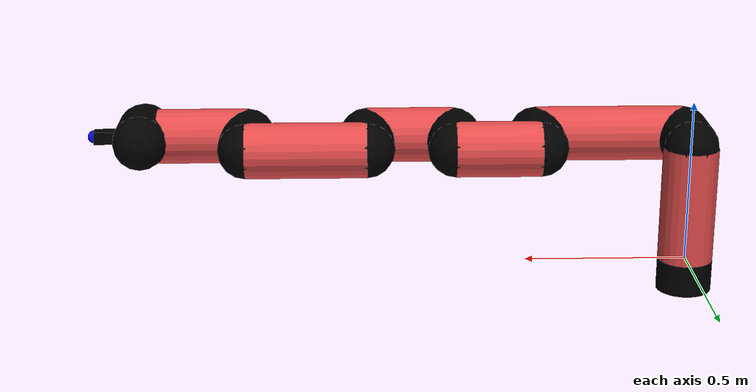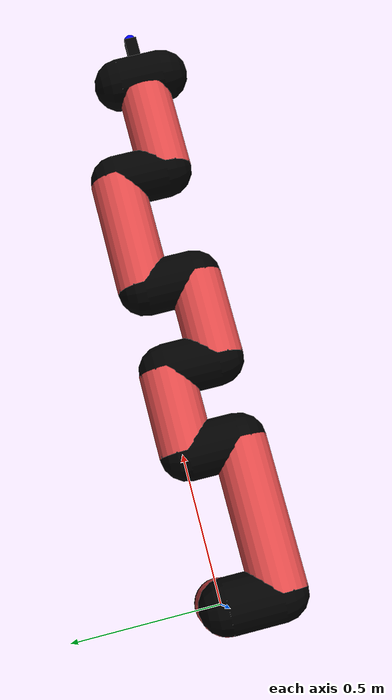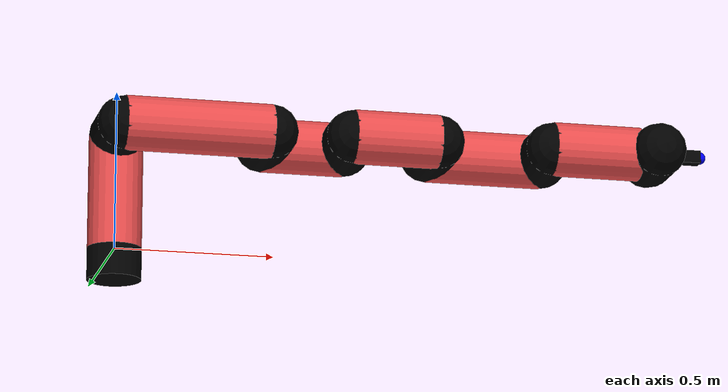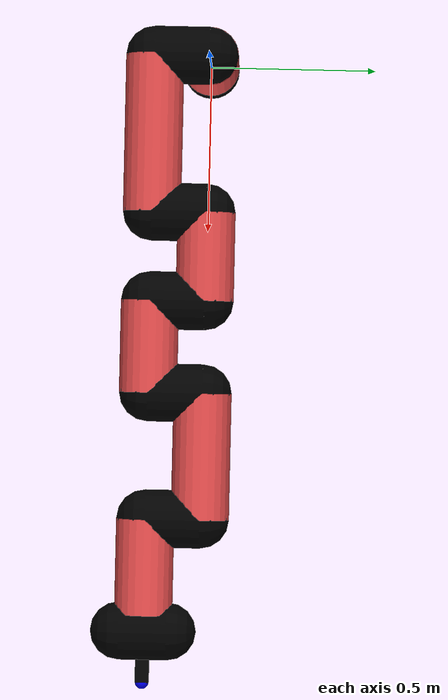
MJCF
<mujoco model="manipulator">
		<compiler angle="degree" coordinate="local" inertiafromgeom="auto" meshdir="meshes/"/>
		<option gravity="0 0 0" integrator="RK4" iterations="30" timestep="0.01"/>

		<default>
		<joint armature="1" limited="true" stiffness="10" damping="15" frictionloss="5.0"/>
		<geom conaffinity="1" condim="3" contype="1" friction=".5 .1 .1" margin="0.002"/>
		<motor ctrllimited="true"/>
		<position ctrllimited="true"/>
		</default>

		<asset>
		<texture builtin="gradient" height="100" rgb1="1.0 1.0 1.0" rgb2="1.0 1.0 1.0" type="skybox" width="100"/>
		<texture builtin="flat" height="32" name="arm_tex" rgb1="0.9 0.3 0.3" type="2d" width="32"/>
		<texture builtin="flat" height="32" name="gripper_tex" rgb1="0.0 0.0 0.0" type="cube" width="32"/>

		<material name="arm_mat" shininess="0.1" specular="0.1" texture="arm_tex"/>
		<material name="gripper_mat" shininess="1" specular="1" texture="gripper_tex"/>
		</asset>

		<worldbody>
		<light cutoff="45" diffuse=".8 .8 .8" dir="0 0.16 -1" directional="false" name="light" pos="0 -2.0 8.0" specular="0.3 0.3 0.3"/>

		<body name="base_link" pos="0 0 -0.1">
		<geom fromto="0 0 0 0 0 0.1" material="arm_mat" name="base_link" rgba="0.0 0.0 0.0 1" size="0.085" type="cylinder"/>
		</body>

		<body name="l1" pos="0 0 0">
<geom fromto="0 0 0 0 0 0.36" material="arm_mat" name="l1" rgba="0.9 0.3 0.3 1" size="0.085" type="cylinder"/>
<geom fromto="0 0 0.36 0 -0.16 0.36" material="arm_mat" name="l1_ex" rgba="0.0 0.0 0.0 1" size="0.085" type="capsule"/>
<joint axis="0 0 1" name="j1" pos="0 0 0" range="-90 90" damping="25.24" frictionloss="12.49"/>

<body name="l2" pos="0 -0.16 0.36">
<geom fromto="0 0 0 0.46 0 0" material="arm_mat" name="l2" rgba="0.9 0.3 0.3 1" size="0.085" type="cylinder"/>
<geom fromto="0.46 0 0 0.46 0.16 0" material="arm_mat" name="l2_ex" rgba="0.0 0.0 0.0 1" size="0.085" type="capsule"/>
<joint axis="0.0 1.0 0.0" name="j2" pos="0 0 0" range="-90 60" damping="26.14" frictionloss="11.02"/>

<body name="l3" pos="0.46 0.16 0">
<geom fromto="0 0 0 0.26 0 0" material="arm_mat" name="l3" rgba="0.9 0.3 0.3 1" size="0.085" type="cylinder"/>
<geom fromto="0.26 0 0 0.26 -0.16 0" material="arm_mat" name="l3_ex" rgba="0.0 0.0 0.0 1" size="0.085" type="capsule"/>
<joint axis="0.0 1.0 0.0" name="j3" pos="0 0 0" range="-30 60" damping="25.77" frictionloss="12.47"/>

<body name="l4" pos="0.26 -0.16 0">
<geom fromto="0 0 0 0.27 0 0" material="arm_mat" name="l4" rgba="0.9 0.3 0.3 1" size="0.085" type="cylinder"/>
<geom fromto="0.27 0 0 0.27 0.16 0" material="arm_mat" name="l4_ex" rgba="0.0 0.0 0.0 1" size="0.085" type="capsule"/>
<joint axis="0.0 1.0 0.0" name="j4" pos="0 0 0" range="-30 60" damping="34.69" frictionloss="11.02"/>

<body name="l5" pos="0.27 0.16 0">
<geom fromto="0 0 0 0.37 0 0" material="arm_mat" name="l5" rgba="0.9 0.3 0.3 1" size="0.085" type="cylinder"/>
<geom fromto="0.37 0 0 0.37 -0.16 0" material="arm_mat" name="l5_ex" rgba="0.0 0.0 0.0 1" size="0.085" type="capsule"/>
<joint axis="0.0 1.0 0.0" name="j5" pos="0 0 0" range="-30 60" damping="33.55" frictionloss="8.9"/>

<body name="l6" pos="0.37 -0.16 0">
<geom fromto="0 0 0 0.28 0 0" material="arm_mat" name="l6" rgba="0.9 0.3 0.3 1" size="0.085" type="cylinder"/>
<joint axis="0.0 1.0 0.0" name="j6" pos="0 0 0" range="-30 60" damping="34.24" frictionloss="9.95"/>

<body name="gripper" pos="0.28 0 0">
<geom fromto="0.05 -0.07 0 0.05 0.07 0" material="gripper_mat" name="gripper" rgba="0.0 0.0 0.0 1" size="0.085" type="capsule"/><joint axis="1 0 0" name="j7" pos="0 0 0" range="-90 90" damping="15" frictionloss="5.0"/><body name="finger" pos="0.1 0 0">
<geom fromto="0 0.0 0 0.1 0.0 0" material="gripper_mat" name="finger" rgba="0.0 0.0 0.0 1" size="0.020 0.06 0.06" type="box"/>
</body>
<site name="current" pos="0.2 0. 0.0" rgba="0. 0. 1.0 1" size="0.02" type="sphere"/>
</body>
</body>
</body>
</body>
</body>
</body>
</body>
</worldbody>
<actuator>
<motor ctrllimited="true" ctrlrange="-1.0 1.0" joint="j1" gear="71.52"/>
<motor ctrllimited="true" ctrlrange="-1.0 1.0" joint="j2" gear="89.26"/>
<motor ctrllimited="true" ctrlrange="-1.0 1.0" joint="j3" gear="92.25"/>
<motor ctrllimited="true" ctrlrange="-1.0 1.0" joint="j4" gear="77.21"/>
<motor ctrllimited="true" ctrlrange="-1.0 1.0" joint="j5" gear="96.46"/>
<motor ctrllimited="true" ctrlrange="-1.0 1.0" joint="j6" gear="76.44"/>
<motor ctrllimited="true" ctrlrange="-1.0 1.0" joint="j7" gear="80"/>
</actuator>
</mujoco>
